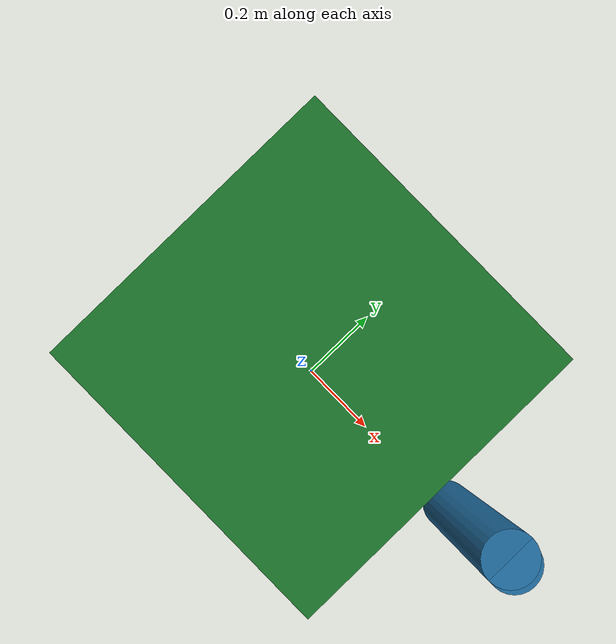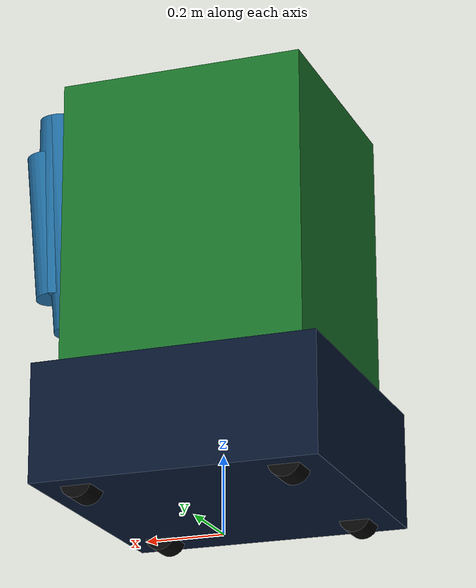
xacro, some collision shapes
<?xml version="1.0"?>
<robot xmlns:xacro="http://www.ros.org/wiki/xacro" name="ai_ship_robot">
  <xacro:arg name="use_sim" default="true" />
  <xacro:arg name="lidar_pattern_file" default="lidar_pattern_dual_opposit.urdf.xacro" />
  <xacro:arg name="publish_odom_tf" default="true" />

  <xacro:property name="base_length" value="0.72" />
  <xacro:property name="base_width" value="0.72" />
  <xacro:property name="base_height" value="0.30" />
  <xacro:property name="ground_clearance" value="0.03" />
  <xacro:property name="wheel_radius" value="0.04" />
  <xacro:property name="wheel_width" value="0.08" />
  <xacro:property name="wheel_mass" value="1.6" />
  <xacro:property name="wheelbase" value="0.52" />
  <xacro:property name="track_width" value="0.54" />
  <xacro:property name="wheel_joint_damping" value="0.25" />
  <!-- 本体中心と車輪中心の差を明示し、接地基準と見た目配置を同じ式系で扱えるようにする。 -->
  <xacro:property name="wheel_center_z_from_base" value="${-base_height / 2.0 + wheel_radius - ground_clearance}" />
  <xacro:property name="base_center_z" value="${wheel_radius + ground_clearance + base_height / 2.0}" />
  <xacro:property name="arm_robot_body_length" value="0.62" />
  <xacro:property name="arm_robot_body_width" value="0.62" />
  <xacro:property name="arm_robot_body_height" value="0.74" />
  <xacro:property name="arm_robot_arm_radius" value="0.05" />
  <xacro:property name="arm_robot_upper_arm_length" value="0.60" />
  <xacro:property name="arm_robot_forearm_length" value="0.50" />
  <xacro:property name="arm_robot_wrist_length" value="0.40" />
  <xacro:property name="arm_robot_shoulder_pitch" value="${5.0 * pi / 180.0}" />
  <xacro:property name="arm_robot_elbow_pitch" value="${175.0 * pi / 180.0}" />
  <xacro:property name="arm_robot_wrist_pitch" value="${-175.0 * pi / 180.0}" />
  <!-- シミュレーション安定性を優先し、台車側へ質量と重心を集めて前のめりを抑える。 -->
  <xacro:property name="base_mass" value="48.0" />
  <xacro:property name="base_com_x" value="-0.03" />
  <xacro:property name="base_com_y" value="0.0" />
  <xacro:property name="base_com_z" value="-0.18" />
  <!-- 上物の見た目と接触判定を維持したまま、転倒に効く慣性だけを大幅に軽くする。 -->
  <xacro:property name="arm_robot_body_mass" value="2.0" />
  <xacro:property name="arm_robot_body_com_x" value="0.0" />
  <xacro:property name="arm_robot_body_com_y" value="0.0" />
  <xacro:property name="arm_robot_body_com_z" value="-0.14" />
  <xacro:property name="arm_robot_upper_arm_mass" value="0.5" />
  <xacro:property name="arm_robot_upper_arm_com_x" value="-0.02" />
  <xacro:property name="arm_robot_upper_arm_com_y" value="0.0" />
  <xacro:property name="arm_robot_upper_arm_com_z" value="-0.04" />
  <xacro:property name="arm_robot_forearm_mass" value="0.5" />
  <xacro:property name="arm_robot_forearm_com_x" value="-0.015" />
  <xacro:property name="arm_robot_forearm_com_y" value="0.0" />
  <xacro:property name="arm_robot_forearm_com_z" value="-0.035" />
  <xacro:property name="arm_robot_wrist_mass" value="0.3" />
  <xacro:property name="arm_robot_wrist_com_x" value="-0.01" />
  <xacro:property name="arm_robot_wrist_com_y" value="0.0" />
  <xacro:property name="arm_robot_wrist_com_z" value="-0.03" />

  <xacro:macro name="box_inertia" params="mass x y z">
    <inertial>
      <mass value="${mass}" />
      <origin xyz="0 0 0" rpy="0 0 0" />
      <inertia
        ixx="${mass * (y * y + z * z) / 12.0}"
        ixy="0"
        ixz="0"
        iyy="${mass * (x * x + z * z) / 12.0}"
        iyz="0"
        izz="${mass * (x * x + y * y) / 12.0}" />
    </inertial>
  </xacro:macro>

  <xacro:macro name="cylinder_inertia" params="mass radius length axis">
    <inertial>
      <mass value="${mass}" />
      <origin xyz="0 0 0" rpy="0 0 0" />
      <xacro:if value="${axis == 'y'}">
        <inertia
          ixx="${mass * (3.0 * radius * radius + length * length) / 12.0}"
          ixy="0"
          ixz="0"
          iyy="${mass * radius * radius / 2.0}"
          iyz="0"
          izz="${mass * (3.0 * radius * radius + length * length) / 12.0}" />
      </xacro:if>
      <xacro:unless value="${axis == 'y'}">
        <inertia
          ixx="${mass * (3.0 * radius * radius + length * length) / 12.0}"
          ixy="0"
          ixz="0"
          iyy="${mass * (3.0 * radius * radius + length * length) / 12.0}"
          iyz="0"
          izz="${mass * radius * radius / 2.0}" />
      </xacro:unless>
    </inertial>
  </xacro:macro>

  <xacro:macro name="drive_wheel" params="prefix x_position y_position">
    <link name="${prefix}_wheel_link">
      <visual>
        <origin xyz="0 0 0" rpy="1.57079632679 0 0" />
        <geometry>
          <cylinder radius="${wheel_radius}" length="${wheel_width}" />
        </geometry>
        <material name="dark_gray">
          <color rgba="0.02 0.02 0.02 1.0" />
        </material>
      </visual>
      <collision>
        <origin xyz="0 0 0" rpy="1.57079632679 0 0" />
        <geometry>
          <cylinder radius="${wheel_radius}" length="${wheel_width}" />
        </geometry>
      </collision>
      <xacro:cylinder_inertia mass="${wheel_mass}" radius="${wheel_radius}" length="${wheel_width}" axis="y" />
    </link>

    <joint name="${prefix}_wheel_joint" type="continuous">
      <parent link="base_link" />
      <child link="${prefix}_wheel_link" />
      <!-- 車輪上端が本体下面よりground_clearanceぶんだけ下に出る位置へ寄せ、埋め込み量を高さ定義と一致させる。 -->
      <origin xyz="${x_position} ${y_position} ${wheel_center_z_from_base}" rpy="0 0 0" />
      <axis xyz="0 1 0" />
      <dynamics damping="${wheel_joint_damping}" friction="0.05" />
    </joint>

    <!-- 4輪接地の安定性を優先し、横滑りと跳ねを接触パラメータで抑える。 -->
    <gazebo reference="${prefix}_wheel_link">
      <material>Gazebo/Black</material>
      <mu1>0.85</mu1>
      <mu2>0.85</mu2>
      <slip1>0.04</slip1>
      <slip2>0.04</slip2>
      <kp>1000000.0</kp>
      <kd>10.0</kd>
      <minDepth>0.002</minDepth>
      <maxVel>0.2</maxVel>
    </gazebo>
  </xacro:macro>

  <xacro:macro name="fixed_arm_robot_fixture">
    <!-- LiDAR遮蔽を見やすくするため、上物本体は台車より一回り小さい箱で高さを強調する。 -->
    <link name="arm_robot_body_link">
      <visual>
        <origin xyz="0 0 0" rpy="0 0 0" />
        <geometry>
          <box size="${arm_robot_body_length} ${arm_robot_body_width} ${arm_robot_body_height}" />
        </geometry>
        <material name="arm_robot_green">
          <color rgba="0.10 0.45 0.16 1.0" />
        </material>
      </visual>
      <collision>
        <origin xyz="0 0 0" rpy="0 0 0" />
        <geometry>
          <box size="${arm_robot_body_length} ${arm_robot_body_width} ${arm_robot_body_height}" />
        </geometry>
      </collision>
      <inertial>
        <mass value="${arm_robot_body_mass}" />
        <origin xyz="${arm_robot_body_com_x} ${arm_robot_body_com_y} ${arm_robot_body_com_z}" rpy="0 0 0" />
        <inertia ixx="${arm_robot_body_mass * (arm_robot_body_width * arm_robot_body_width + arm_robot_body_height * arm_robot_body_height) / 12.0}" ixy="0" ixz="0" iyy="${arm_robot_body_mass * (arm_robot_body_length * arm_robot_body_length + arm_robot_body_height * arm_robot_body_height) / 12.0}" iyz="0" izz="${arm_robot_body_mass * (arm_robot_body_length * arm_robot_body_length + arm_robot_body_width * arm_robot_body_width) / 12.0}" />
      </inertial>
    </link>

    <joint name="arm_robot_body_joint" type="fixed">
      <parent link="base_link" />
      <child link="arm_robot_body_link" />
      <origin xyz="0 0 ${base_height / 2.0 + arm_robot_body_height / 2.0}" rpy="0 0 0" />
    </joint>

    <!-- 各リンク形状をローカル+Zへ揃え、姿勢表現をjoint側へ集約する。 -->
    <link name="arm_robot_upper_arm_link">
      <visual>
        <origin xyz="0 0 ${arm_robot_upper_arm_length / 2.0}" rpy="0 0 0" />
        <geometry>
          <cylinder radius="${arm_robot_arm_radius}" length="${arm_robot_upper_arm_length}" />
        </geometry>
        <material name="arm_robot_blue">
          <color rgba="0.12 0.42 0.62 1.0" />
        </material>
      </visual>
      <collision>
        <origin xyz="0 0 ${arm_robot_upper_arm_length / 2.0}" rpy="0 0 0" />
        <geometry>
          <cylinder radius="${arm_robot_arm_radius}" length="${arm_robot_upper_arm_length}" />
        </geometry>
      </collision>
      <inertial>
        <mass value="${arm_robot_upper_arm_mass}" />
        <origin xyz="${arm_robot_upper_arm_com_x} ${arm_robot_upper_arm_com_y} ${arm_robot_upper_arm_com_z}" rpy="0 0 0" />
        <inertia ixx="${arm_robot_upper_arm_mass * (3.0 * arm_robot_arm_radius * arm_robot_arm_radius + arm_robot_upper_arm_length * arm_robot_upper_arm_length) / 12.0}" ixy="0" ixz="0" iyy="${arm_robot_upper_arm_mass * (3.0 * arm_robot_arm_radius * arm_robot_arm_radius + arm_robot_upper_arm_length * arm_robot_upper_arm_length) / 12.0}" iyz="0" izz="${arm_robot_upper_arm_mass * arm_robot_arm_radius * arm_robot_arm_radius / 2.0}" />
      </inertial>
    </link>

    <!-- shoulderの立ち上がり角で胴体への近接を確保しつつ、親子座標系の向きを一致させる。 -->
    <joint name="arm_robot_shoulder_joint" type="fixed">
      <parent link="arm_robot_body_link" />
      <child link="arm_robot_upper_arm_link" />
      <origin xyz="${arm_robot_body_length / 2.0 + 0.1} 0 ${0.20 - arm_robot_body_height / 2.0}" rpy="0 ${arm_robot_shoulder_pitch} 0" />
    </joint>

    <link name="arm_robot_forearm_link">
      <visual>
        <origin xyz="0 0 ${arm_robot_forearm_length / 2.0}" rpy="0 0 0" />
        <geometry>
          <cylinder radius="${arm_robot_arm_radius}" length="${arm_robot_forearm_length}" />
        </geometry>
        <material name="arm_robot_blue">
          <color rgba="0.12 0.42 0.62 1.0" />
        </material>
      </visual>
      <collision>
        <origin xyz="0 0 ${arm_robot_forearm_length / 2.0}" rpy="0 0 0" />
        <geometry>
          <cylinder radius="${arm_robot_arm_radius}" length="${arm_robot_forearm_length}" />
        </geometry>
      </collision>
      <inertial>
        <mass value="${arm_robot_forearm_mass}" />
        <origin xyz="${arm_robot_forearm_com_x} ${arm_robot_forearm_com_y} ${arm_robot_forearm_com_z}" rpy="0 0 0" />
        <inertia ixx="${arm_robot_forearm_mass * (3.0 * arm_robot_arm_radius * arm_robot_arm_radius + arm_robot_forearm_length * arm_robot_forearm_length) / 12.0}" ixy="0" ixz="0" iyy="${arm_robot_forearm_mass * (3.0 * arm_robot_arm_radius * arm_robot_arm_radius + arm_robot_forearm_length * arm_robot_forearm_length) / 12.0}" iyz="0" izz="${arm_robot_forearm_mass * arm_robot_arm_radius * arm_robot_arm_radius / 2.0}" />
      </inertial>
    </link>

    <!-- 肘以降の接続位置を各リンク先端へ固定し、相対角だけで全体姿勢を説明できるようにする。 -->
    <joint name="arm_robot_elbow_joint" type="fixed">
      <parent link="arm_robot_upper_arm_link" />
      <child link="arm_robot_forearm_link" />
      <origin xyz="0 0 ${arm_robot_upper_arm_length}" rpy="0 ${arm_robot_elbow_pitch} 0" />
    </joint>

    <link name="arm_robot_wrist_link">
      <visual>
        <origin xyz="0 0 ${arm_robot_wrist_length / 2.0}" rpy="0 0 0" />
        <geometry>
          <cylinder radius="${arm_robot_arm_radius}" length="${arm_robot_wrist_length}" />
        </geometry>
        <material name="arm_robot_blue">
          <color rgba="0.12 0.42 0.62 1.0" />
        </material>
      </visual>
      <collision>
        <origin xyz="0 0 ${arm_robot_wrist_length / 2.0}" rpy="0 0 0" />
        <geometry>
          <cylinder radius="${arm_robot_arm_radius}" length="${arm_robot_wrist_length}" />
        </geometry>
      </collision>
      <inertial>
        <mass value="${arm_robot_wrist_mass}" />
        <origin xyz="${arm_robot_wrist_com_x} ${arm_robot_wrist_com_y} ${arm_robot_wrist_com_z}" rpy="0 0 0" />
        <inertia ixx="${arm_robot_wrist_mass * (3.0 * arm_robot_arm_radius * arm_robot_arm_radius + arm_robot_wrist_length * arm_robot_wrist_length) / 12.0}" ixy="0" ixz="0" iyy="${arm_robot_wrist_mass * (3.0 * arm_robot_arm_radius * arm_robot_arm_radius + arm_robot_wrist_length * arm_robot_wrist_length) / 12.0}" iyz="0" izz="${arm_robot_wrist_mass * arm_robot_arm_radius * arm_robot_arm_radius / 2.0}" />
      </inertial>
    </link>

    <joint name="arm_robot_wrist_joint" type="fixed">
      <parent link="arm_robot_forearm_link" />
      <child link="arm_robot_wrist_link" />
      <origin xyz="0 0 ${arm_robot_forearm_length}" rpy="0 ${arm_robot_wrist_pitch} 0" />
    </joint>
  </xacro:macro>

  <link name="base_footprint" />

  <joint name="base_footprint_joint" type="fixed">
    <parent link="base_footprint" />
    <child link="base_link" />
    <!-- base_linkを本体中心に固定し、本体下面がground_clearanceだけ地面から離れるようにする。 -->
    <origin xyz="0 0 ${base_center_z}" rpy="0 0 0" />
  </joint>

  <link name="base_link">
    <visual>
      <!-- 本体の物理近似は箱のまま維持しつつ、表示だけ実機外形メッシュへ置き換える。 -->
      <origin xyz="0 0 -${base_height / 2.0}" rpy="0 0 0" />
      <geometry>
        <mesh filename="package://ai_ship_robot_description/mesh/AiTran500_L24970.stl"
              scale="0.001 0.001 0.001"/>
      </geometry>
      <material name="navy_blue">
        <color rgba="0.02 0.08 0.18 1.0" />
      </material>
    </visual>
    <collision>
      <origin xyz="0 0 0" rpy="0 0 0" />
      <geometry>
        <box size="${base_length} ${base_width} ${base_height}" />
      </geometry>
    </collision>
    <inertial>
      <mass value="${base_mass}" />
      <origin xyz="${base_com_x} ${base_com_y} ${base_com_z}" rpy="0 0 0" />
      <inertia ixx="${base_mass * (base_width * base_width + base_height * base_height) / 12.0}" ixy="0" ixz="0" iyy="${base_mass * (base_length * base_length + base_height * base_height) / 12.0}" iyz="0" izz="${base_mass * (base_length * base_length + base_width * base_width) / 12.0}" />
    </inertial>
  </link>

  <!-- 左右2グループの4輪を個別joint化し、planar moveではなく接地駆動へ切り替える。 -->
  <xacro:drive_wheel prefix="left_front" x_position="${wheelbase / 2.0}" y_position="${track_width / 2.0}" />
  <xacro:drive_wheel prefix="left_rear" x_position="${-wheelbase / 2.0}" y_position="${track_width / 2.0}" />
  <xacro:drive_wheel prefix="right_front" x_position="${wheelbase / 2.0}" y_position="${-track_width / 2.0}" />
  <xacro:drive_wheel prefix="right_rear" x_position="${-wheelbase / 2.0}" y_position="${-track_width / 2.0}" />
  <xacro:fixed_arm_robot_fixture />

  <!-- 起動時に指定された配置ファイルを読み込み、URDF編集なしでLiDARパターンを切り替える。 -->
  <xacro:include filename="lidar/patterns/$(arg lidar_pattern_file)" />

  <link name="imu_link">
    <visual>
      <origin xyz="0 0 0" rpy="0 0 0" />
      <geometry>
        <box size="0.08 0.06 0.025" />
      </geometry>
      <material name="imu_green">
        <color rgba="0.0 0.35 0.18 1.0" />
      </material>
    </visual>
    <collision>
      <origin xyz="0 0 0" rpy="0 0 0" />
      <geometry>
        <box size="0.08 0.06 0.025" />
      </geometry>
    </collision>
    <xacro:box_inertia mass="0.1" x="0.08" y="0.06" z="0.025" />
  </link>

  <joint name="imu_joint" type="fixed">
    <parent link="base_link" />
    <child link="imu_link" />
    <origin xyz="0 0 ${base_center_z + base_height / 2.0 - 0.02}" rpy="0 0 0" />
  </joint>

  <gazebo reference="base_link">
    <material>Gazebo/Blue</material>
  </gazebo>
  <xacro:if value="$(arg use_sim)">
    <gazebo>
      <plugin filename="libgazebo_ros2_control.so" name="gazebo_ros2_control">
        <parameters>$(find ai_ship_robot_gazebo)/config/slope_drive_controller.yaml</parameters>
      </plugin>
    </gazebo>

    <!-- 4輪 joint を velocity interface として公開し、外部 launch から controller spawn できるようにする。 -->
    <ros2_control name="gazebo_system" type="system">
      <hardware>
        <plugin>gazebo_ros2_control/GazeboSystem</plugin>
      </hardware>
      <joint name="left_front_wheel_joint">
        <command_interface name="velocity" />
        <state_interface name="position" />
        <state_interface name="velocity" />
      </joint>
      <joint name="left_rear_wheel_joint">
        <command_interface name="velocity" />
        <state_interface name="position" />
        <state_interface name="velocity" />
      </joint>
      <joint name="right_front_wheel_joint">
        <command_interface name="velocity" />
        <state_interface name="position" />
        <state_interface name="velocity" />
      </joint>
      <joint name="right_rear_wheel_joint">
        <command_interface name="velocity" />
        <state_interface name="position" />
        <state_interface name="velocity" />
      </joint>
    </ros2_control>

    <!-- IMUはClassicのgazebo_ros sensor plugin経由でROS topicへ流す。 -->
    <gazebo reference="imu_link">
      <sensor name="imu" type="imu">
        <always_on>true</always_on>
        <update_rate>200</update_rate>
        <plugin filename="libgazebo_ros_imu_sensor.so" name="gazebo_ros_imu_sensor">
          <updateRateHZ>200.0</updateRateHZ>
          <ros>
            <namespace>/</namespace>
            <remapping>~/out:=imu/data</remapping>
          </ros>
          <frame_name>imu_link</frame_name>
        </plugin>
      </sensor>
    </gazebo>
  </xacro:if>
</robot>

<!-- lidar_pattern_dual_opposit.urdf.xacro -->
<robot xmlns:xacro="http://www.ros.org/wiki/xacro" name="lidar_pattern_03_dual_front_corners_down_yaw38">
  <xacro:include filename="../models/mid360_lidar.urdf.xacro" />

  <!-- Pattern : mount two LiDARs vertically, facing in opposite directions. -->
  <xacro:property name="deg_to_rad" value="${pi / 180.0}" />
  <xacro:property name="lidar_x" value="${base_length / 2.0 + 0.10}" />
  <xacro:property name="lidar_y" value="0.0" />
  <xacro:property name="lidar_ground_height" value="0.09" />
  <xacro:property name="lidar_upper_z" value="${lidar_ground_height + 0.035}" />
  <xacro:property name="lidar_lower_z" value="${lidar_ground_height - 0.035}" />
  <xacro:property name="lidar_upper_roll" value="${0.0 * deg_to_rad}" />
  <xacro:property name="lidar_lower_roll" value="${180.0 * deg_to_rad}" />
  <xacro:property name="lidar_yaw" value="0.0" />
  <xacro:property name="lidar_pitch" value="0.0" />

  <xacro:mid360_lidar
    prefix="lidar1"
    x="${lidar_x}"
    y="${lidar_y}"
    z="${lidar_upper_z}"
    roll="${lidar_upper_roll}"
    pitch="${lidar_pitch}"
    yaw="${lidar_yaw}"
    enable_imu="true"
    imu_topic="/lidar1/imu" />

  <xacro:mid360_lidar
    prefix="lidar2"
    x="${lidar_x}"
    y="${lidar_y}"
    z="${lidar_lower_z}"
    roll="${lidar_lower_roll}"
    pitch="${lidar_pitch}"
    yaw="${lidar_yaw}"
    enable_imu="true"
    imu_topic="/lidar2/imu" />
</robot>

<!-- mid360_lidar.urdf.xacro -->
<robot xmlns:xacro="http://www.ros.org/wiki/xacro" name="mid360_lidar">
  <xacro:arg name="half_lidar_resolution" default="false" />
  <xacro:arg name="quarter_lidar_resolution" default="false" />

  <xacro:property name="mid360_depth" value="0.065" />
  <xacro:property name="mid360_width" value="0.065" />
  <xacro:property name="mid360_height" value="0.060" />
  <xacro:property name="mid360_samples" value="40000" />
  <xacro:property name="mid360_downsample" value="1" />
  <xacro:property name="mid360_half_downsample" value="2" />
  <xacro:property name="mid360_quarter_downsample" value="4" />
  <xacro:property name="mid360_imu_x" value="0.011" />
  <xacro:property name="mid360_imu_y" value="0.02329" />
  <xacro:property name="mid360_imu_z" value="-0.04412" />
  <xacro:property name="mid360_imu_size" value="0.015" />

  <xacro:macro name="mid360_gazebo_sensor" params="prefix">
    <gazebo reference="${prefix}_link">
      <sensor name="${prefix}_link" type="ray">
        <always_on>true</always_on>
        <visualize>false</visualize>
        <update_rate>10</update_rate>
        <!-- Livox pluginの要求に合わせ、可視化用のray設定とCSV走査設定を同居させる。 -->
        <plugin name="${prefix}_livox_plugin" filename="libros2_livox.so">
          <ray>
            <scan>
              <horizontal>
                <samples>100</samples>
                <resolution>1</resolution>
                <min_angle>0</min_angle>
                <max_angle>${2.0 * pi}</max_angle>
              </horizontal>
              <vertical>
                <samples>360</samples>
                <resolution>1</resolution>
                <min_angle>${-7.22 * pi / 180.0}</min_angle>
                <max_angle>${55.22 * pi / 180.0}</max_angle>
              </vertical>
            </scan>
            <range>
              <min>0.10</min>
              <max>200.0</max>
              <resolution>0.002</resolution>
            </range>
            <noise>
              <type>gaussian</type>
              <mean>0.0</mean>
              <stddev>0.01</stddev>
            </noise>
          </ray>
          <visualize>false</visualize>
          <samples>${mid360_samples}</samples>
          <!-- downsample値だけでLivox pluginの負荷を切り替え、topic構成は維持する。 -->
          <xacro:if value="$(arg quarter_lidar_resolution)">
            <downsample>${mid360_quarter_downsample}</downsample>
          </xacro:if>
          <xacro:unless value="$(arg half_lidar_resolution)">
            <xacro:unless value="$(arg quarter_lidar_resolution)">
              <downsample>${mid360_downsample}</downsample>
            </xacro:unless>
          </xacro:unless>
          <xacro:if value="$(arg half_lidar_resolution)">
            <downsample>${mid360_half_downsample}</downsample>
          </xacro:if>
          <csv_file_name>$(find ros2_livox_simulation)/scan_mode/mid360.csv</csv_file_name>
          <topic>${prefix}_livox</topic>
          <custom_topic>/${prefix}/custom</custom_topic>
          <pointcloud2_topic>/${prefix}/points</pointcloud2_topic>
          <enable_pointcloud2>false</enable_pointcloud2>
        </plugin>
      </sensor>
    </gazebo>
  </xacro:macro>

  <xacro:macro name="mid360_gazebo_imu" params="prefix imu_topic">
    <gazebo reference="${prefix}_imu_link">
      <sensor name="${prefix}_imu" type="imu">
        <always_on>true</always_on>
        <update_rate>200</update_rate>
        <!-- Mid-360内蔵IMUとして扱えるよう、IMU topicとframeをLiDAR個体に紐付ける。 -->
        <plugin filename="libgazebo_ros_imu_sensor.so" name="${prefix}_gazebo_ros_imu_sensor">
          <updateRateHZ>200.0</updateRateHZ>
          <ros>
            <namespace>/</namespace>
            <remapping>~/out:=${imu_topic}</remapping>
          </ros>
          <frame_name>${prefix}_imu_link</frame_name>
        </plugin>
      </sensor>
    </gazebo>
  </xacro:macro>

  <xacro:macro name="mid360_lidar" params="prefix x y z roll pitch yaw enable_imu:=false imu_topic:=/imu/data">
    <link name="${prefix}_link">
      <visual>
        <!-- LiDAR配置用joint姿勢を変えずに済むよう、見た目の差し替えはvisual側だけで閉じ込める。 -->
        <origin xyz="0 ${-mid360_width / 2.0} ${-mid360_height / 2.0}" rpy="${pi / 2.0} 0 ${pi / 2.0}" />
        <geometry>
          <mesh filename="package://ai_ship_robot_description/mesh/mid360.stl"
                scale="0.001 0.001 0.001" />
        </geometry>
        <material name="sensor_black">
          <color rgba="0.0 0.0 0.0 1.0" />
        </material>
      </visual>
      <collision>
        <origin xyz="0 0 0" rpy="0 0 0" />
        <geometry>
          <box size="${mid360_depth} ${mid360_width} ${mid360_height}" />
        </geometry>
      </collision>
      <xacro:box_inertia mass="0.265" x="${mid360_depth}" y="${mid360_width}" z="${mid360_height}" />
    </link>

    <link name="${prefix}_imu_link">
      <visual>
        <origin xyz="0 0 0" rpy="0 0 0" />
        <geometry>
          <box size="${mid360_imu_size} ${mid360_imu_size} ${mid360_imu_size}" />
        </geometry>
        <material name="imu_green">
          <color rgba="0.0 0.35 0.18 1.0" />
        </material>
      </visual>
      <xacro:box_inertia mass="0.01" x="${mid360_imu_size}" y="${mid360_imu_size}" z="${mid360_imu_size}" />
    </link>

    <joint name="${prefix}_joint" type="fixed">
      <parent link="base_link" />
      <child link="${prefix}_link" />
      <origin xyz="${x} ${y} ${z}" rpy="${roll} ${pitch} ${yaw}" />
    </joint>

    <joint name="${prefix}_imu_joint" type="fixed">
      <parent link="${prefix}_link" />
      <child link="${prefix}_imu_link" />
      <!-- 公式Mid-360 manual p.15のIMU chip位置をpoint cloud coordinates基準で反映する。 -->
      <origin xyz="${mid360_imu_x} ${mid360_imu_y} ${mid360_imu_z}" rpy="0 0 0" />
    </joint>

    <xacro:if value="$(arg use_sim)">
      <xacro:mid360_gazebo_sensor prefix="${prefix}" />
      <xacro:if value="${enable_imu}">
        <xacro:mid360_gazebo_imu prefix="${prefix}" imu_topic="${imu_topic}" />
      </xacro:if>
    </xacro:if>
  </xacro:macro>
</robot>
